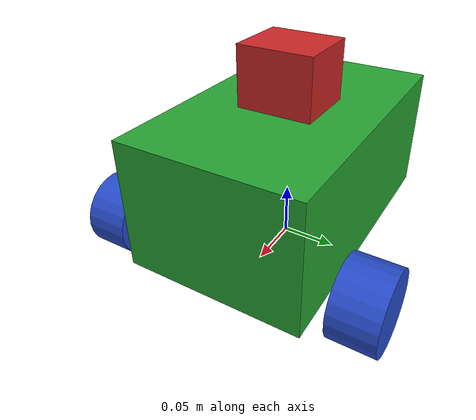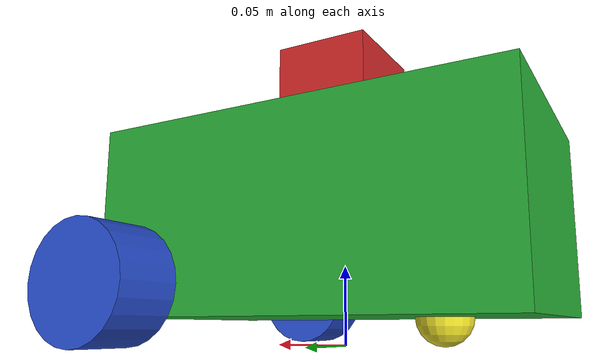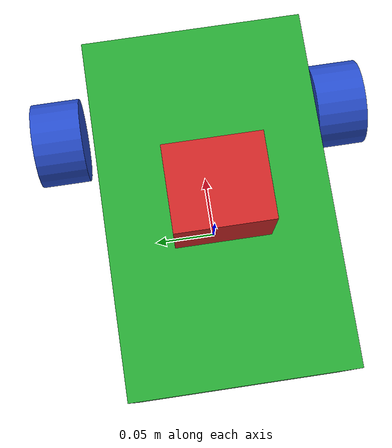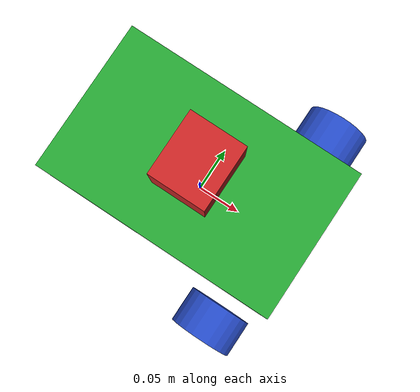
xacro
<?xml version="1.0"?>
<robot xmlns:xacro="http://www.ros.org/wiki/xacro" >

    <xacro:property name="base_length" value="0.263"/>
    <xacro:property name="base_width" value="0.1635"/>
    <xacro:property name="base_height" value="0.12"/>
    <xacro:property name="base_mass" value="1.671"/>

    <xacro:property name="wheel_radius" value="0.035"/>
    <xacro:property name="wheel_length" value="0.04"/>
    <xacro:property name="wheel_mass" value="0.055"/>

    <xacro:property name="caster_wheel_radius" value="0.0175"/>
    <xacro:property name="caster_wheel_mass" value="0.020"/>

    <xacro:macro name="cuboid_link" params="prefix m l b h x y z r p yaw " >
        <link name="${prefix}_link">
            <visual>
                <geometry>
                    <box size="${l} ${b} ${h}"/>
                </geometry>
                <origin xyz="${x} ${y} ${z}" rpy="${r} ${p} ${yaw}"/>
                <material name="green"/>
            </visual>
            <xacro:cuboid_collision lbh="${l} ${b} ${h}" o_xyz="${x} ${y} ${z}" o_rpy="${r} ${p} ${yaw}"/>
            <xacro:cuboid_inertia m="${m}" l="${l}" b="${b}" h="${h}" o_xyz="${x} ${y} ${z}" o_rpy="${r} ${p} ${yaw}"/>
        </link>
    </xacro:macro>

    <xacro:macro name="cube_link" params="prefix m l b h x y z r p yaw " >
        <link name="${prefix}_link">
            <visual>
                <geometry>
                    <box size="${l} ${b} ${h}"/>
                </geometry>
                <origin xyz="${x} ${y} ${z}" rpy="${r} ${p} ${yaw}"/>
                <material name="red"/>
            </visual>
            <xacro:cuboid_collision lbh="${l} ${b} ${h}" o_xyz="${x} ${y} ${z}" o_rpy="${r} ${p} ${yaw}"/>
            <xacro:cuboid_inertia m="${m}" l="${l}" b="${b}" h="${h}" o_xyz="${x} ${y} ${z}" o_rpy="${r} ${p} ${yaw}"/>
        </link>
    </xacro:macro>

    <xacro:macro name="small_cuboid_link" params="prefix m l b h x y z r p yaw " >
        <link name="${prefix}_link">
            <visual>
                <geometry>
                    <box size="${l} ${b} ${h}"/>
                </geometry>
                <origin xyz="${x} ${y} ${z}" rpy="${r} ${p} ${yaw}"/>
                <material name="grey"/>
            </visual>
            <xacro:cuboid_collision lbh="${l} ${b} ${h}" o_xyz="${x} ${y} ${z}" o_rpy="${r} ${p} ${yaw}"/>
            <xacro:cuboid_inertia m="${m}" l="${l}" b="${b}" h="${h}" o_xyz="${x} ${y} ${z}" o_rpy="${r} ${p} ${yaw}"/>
        </link>
    </xacro:macro>

    <xacro:macro name="wheel_link" params="prefix m r l x y z roll p yaw">
        <link name="${prefix}_wheel_link">
            <visual>
                <geometry>
                    <cylinder radius="${r}" length="${l}"/>
                </geometry>
                <origin xyz="${x} ${y} ${z}" rpy="${roll} ${p} ${yaw}"/>
                <material name="blue"/>
            </visual>
            <xacro:cylinder_inertia m="${m}" r="${r}" l="${l}" o_xyz="${x} ${y} ${z}" o_rpy="${roll} ${p} ${yaw}"/>
            <collision>
                <geometry>
                    <sphere radius="${r}"/>
                </geometry>
            </collision>
        </link>
    </xacro:macro>

    <xacro:macro name="sphere_link" params="prefix m r x y z roll p yaw">
        <link name="${prefix}_sphere_link">
            <visual>
                <geometry>
                    <sphere radius="${r}"/>
                </geometry>
                <origin xyz="${x} ${y} ${z}" rpy="${roll} ${p} ${yaw}"/>
                <material name="yellow"/>
            </visual>
            <xacro:sphere_inertia m="${m}" r="${r}" o_xyz="${x} ${y} ${z}" o_rpy="${roll} ${p} ${yaw}"/>
            <xacro:sphere_collision r="${r}" o_xyz="${x} ${y} ${z}" o_rpy="${roll} ${p} ${yaw}"/>
        </link>
    </xacro:macro>

    <link name="odom"/>
    <joint name="odom_to_base_footprint" type="fixed">
        <parent link="odom"/>
        <child  link="base_footprint"/>
        <origin xyz="0 0 0" rpy="0 0 0"/>
    </joint>

    <link name="base_footprint"/>

    <xacro:cuboid_link prefix="base" m="${base_mass}" l="${base_length}" b="${base_width}" h="${base_height}" x="0" y="0" z="${base_height/2}" r="0" p="0" yaw="0"/>

    <xacro:wheel_link prefix="front_right" m="${wheel_mass}" l="${wheel_length}" r="${wheel_radius}" x="0" y="0" z="0" roll="${pi/2}" p="0" yaw="0"/>

    <xacro:wheel_link prefix="front_left" m="${wheel_mass}" l="${wheel_length}" r="${wheel_radius}" x="0" y="0" z="0" roll="${pi/2}" p="0" yaw="0"/>

    <xacro:sphere_link prefix="rear_caster" m="${caster_wheel_mass}" r="${caster_wheel_radius}" x="0" y="0" z="0" roll="0" p="0" yaw="0"/>

    <joint name="base_footprint_base_joint" type="fixed">
        <parent link="base_footprint"/>
        <child link="base_link"/>
        <origin xyz="0 0 0.0175" rpy="0 0 0"/>
    </joint>

    <joint name="base_front_right_wheel_joint" type="continuous">
        <parent link="base_link"/>
        <child link="front_right_wheel_link"/>
        <axis xyz="0 1 0"/>
        <origin xyz="0.090391 ${-((0.171/2)+(wheel_length/2)+0.01125)} 0.0175" rpy="0 0 0"/>
    </joint>

    <joint name="base_front_left_wheel_joint" type="continuous">
        <parent link="base_link"/>
        <child link="front_left_wheel_link"/>
        <axis xyz="0 1 0"/>
        <origin xyz="0.090391 ${((0.171/2)+(wheel_length/2)+0.01125)} 0.0175" rpy="0 0 0"/>
    </joint>

    <joint name="base_rear_caster_wheel_joint" type="fixed">
        <parent link="base_link"/>
        <child link="rear_caster_sphere_link"/>
        <origin xyz="-0.0655 0 0" rpy="0 0 0"/>
    </joint>

    <gazebo reference="rear_caster_sphere_link">
        <mu1 value="0.001"/>
        <mu2 value="0.001"/>
    </gazebo>

    <xacro:cube_link prefix="scan" m="0.186" l="0.0605" b="0.069" h="0.055" x="0" y="0" z="-0.0175" r="0" p="0" yaw="0"/>

    <joint  name="scan_joint" type="fixed">
        <origin xyz="0.0 0 ${0.12+0.045}" rpy="0 0 0"/>
        <child link="scan_link"/>
        <parent link="base_link"/>
    </joint>

</robot>
